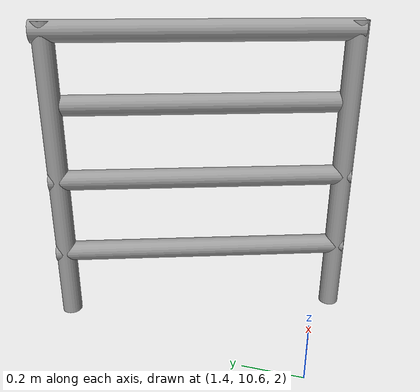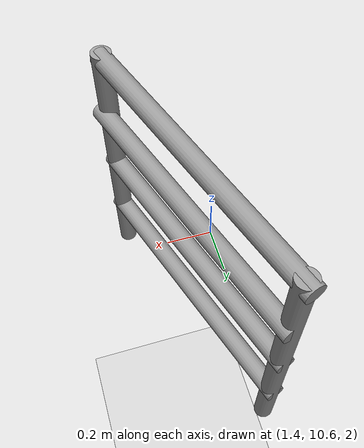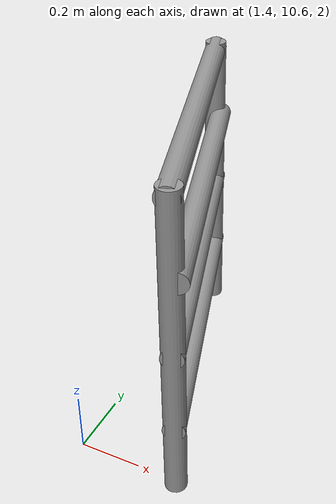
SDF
<sdf version="1.6">
 <world name="default">
  <model name="ground_plane">
   <static>1</static>
   <link name="link">
    <collision name="collision">
     <geometry><plane><normal>0 0 1</normal><size>100 100</size></plane></geometry>
     <surface><friction><ode><mu>100</mu><mu2>50</mu2></ode></friction></surface>
    </collision>
    <visual name="visual">
     <cast_shadows>0</cast_shadows>
     <geometry><plane><normal>0 0 1</normal><size>100 100</size></plane></geometry>
     <material>
      <script><uri>file://media/materials/scripts/gazebo.material</uri><name>Gazebo/Grey</name></script>
     </material>
    </visual>
   </link>
  </model>
  <model name="indoor_fence">
   <link name="link">
    <inertial>
     <mass>1</mass>
     <inertia><ixx>0.145833</ixx><ixy>0</ixy><ixz>0</ixz><iyy>0.145833</iyy><iyz>0</iyz><izz>0.125</izz></inertia>
    </inertial>
    <pose>0.071704 -0.128855 0 0 -0 0</pose>
    <visual name="visual">
     <geometry><cylinder><radius>0.0332942</radius><length>1</length></cylinder></geometry>
     <material>
      <script><name>Gazebo/Grey</name><uri>file://media/materials/scripts/gazebo.material</uri></script>
      <shader type="pixel"/>
     </material>
    </visual>
    <collision name="collision">
     <geometry><cylinder><radius>0.033294</radius><length>1</length></cylinder></geometry>
     <surface>
      <friction>
       <ode><mu>1</mu><mu2>1</mu2><fdir1>0 0 0</fdir1><slip1>0</slip1><slip2>0</slip2></ode>
       <torsional>
        <coefficient>1</coefficient>
        <patch_radius>0</patch_radius>
        <surface_radius>0</surface_radius>
        <use_patch_radius>1</use_patch_radius>
        <ode><slip>0</slip></ode>
       </torsional>
      </friction>
      <bounce><restitution_coefficient>0</restitution_coefficient><threshold>1e+06</threshold></bounce>
      <contact>
       <collide_without_contact>0</collide_without_contact>
       <collide_without_contact_bitmask>1</collide_without_contact_bitmask>
       <collide_bitmask>1</collide_bitmask>
       <ode>
        <soft_cfm>0</soft_cfm>
        <soft_erp>0.2</soft_erp>
        <kp>1e+13</kp>
        <kd>1</kd>
        <max_vel>0.01</max_vel>
        <min_depth>0</min_depth>
       </ode>
       <bullet>
        <split_impulse>1</split_impulse>
        <split_impulse_penetration_threshold>-0.01</split_impulse_penetration_threshold>
        <soft_cfm>0</soft_cfm>
        <soft_erp>0.2</soft_erp>
        <kp>1e+13</kp>
        <kd>1</kd>
       </bullet>
      </contact>
     </surface>
    </collision>
   </link>
   <link name="link_clone">
    <inertial>
     <mass>1</mass>
     <inertia><ixx>0.145833</ixx><ixy>0</ixy><ixz>0</ixz><iyy>0.145833</iyy><iyz>0</iyz><izz>0.125</izz></inertia>
    </inertial>
    <pose>0.369391 -1.02864 0 0 -0 0</pose>
    <visual name="visual">
     <geometry><cylinder><radius>0.0332942</radius><length>1</length></cylinder></geometry>
     <material>
      <script><name>Gazebo/Grey</name><uri>file://media/materials/scripts/gazebo.material</uri></script>
      <shader type="pixel"/>
     </material>
    </visual>
    <collision name="collision">
     <geometry><cylinder><radius>0.033294</radius><length>1</length></cylinder></geometry>
     <surface>
      <friction>
       <ode><mu>1</mu><mu2>1</mu2><fdir1>0 0 0</fdir1><slip1>0</slip1><slip2>0</slip2></ode>
       <torsional>
        <coefficient>1</coefficient>
        <patch_radius>0</patch_radius>
        <surface_radius>0</surface_radius>
        <use_patch_radius>1</use_patch_radius>
        <ode><slip>0</slip></ode>
       </torsional>
      </friction>
      <bounce><restitution_coefficient>0</restitution_coefficient><threshold>1e+06</threshold></bounce>
      <contact>
       <collide_without_contact>0</collide_without_contact>
       <collide_without_contact_bitmask>1</collide_without_contact_bitmask>
       <collide_bitmask>1</collide_bitmask>
       <ode>
        <soft_cfm>0</soft_cfm>
        <soft_erp>0.2</soft_erp>
        <kp>1e+13</kp>
        <kd>1</kd>
        <max_vel>0.01</max_vel>
        <min_depth>0</min_depth>
       </ode>
       <bullet>
        <split_impulse>1</split_impulse>
        <split_impulse_penetration_threshold>-0.01</split_impulse_penetration_threshold>
        <soft_cfm>0</soft_cfm>
        <soft_erp>0.2</soft_erp>
        <kp>1e+13</kp>
        <kd>1</kd>
       </bullet>
      </contact>
     </surface>
    </collision>
   </link>
   <link name="link_clone_0">
    <inertial>
     <mass>1</mass>
     <inertia><ixx>0.145833</ixx><ixy>0</ixy><ixz>0</ixz><iyy>0.145833</iyy><iyz>0</iyz><izz>0.125</izz></inertia>
    </inertial>
    <pose>0.220035 -0.575022 -0.262394 -1.57275 0.000646 0.319166</pose>
    <visual name="visual">
     <geometry><cylinder><radius>0.0332942</radius><length>1</length></cylinder></geometry>
     <material>
      <script><name>Gazebo/Grey</name><uri>file://media/materials/scripts/gazebo.material</uri></script>
      <shader type="pixel"/>
     </material>
    </visual>
    <collision name="collision">
     <geometry><cylinder><radius>0.033294</radius><length>1</length></cylinder></geometry>
     <surface>
      <friction>
       <ode><mu>1</mu><mu2>1</mu2><fdir1>0 0 0</fdir1><slip1>0</slip1><slip2>0</slip2></ode>
       <torsional>
        <coefficient>1</coefficient>
        <patch_radius>0</patch_radius>
        <surface_radius>0</surface_radius>
        <use_patch_radius>1</use_patch_radius>
        <ode><slip>0</slip></ode>
       </torsional>
      </friction>
      <bounce><restitution_coefficient>0</restitution_coefficient><threshold>1e+06</threshold></bounce>
      <contact>
       <collide_without_contact>0</collide_without_contact>
       <collide_without_contact_bitmask>1</collide_without_contact_bitmask>
       <collide_bitmask>1</collide_bitmask>
       <ode>
        <soft_cfm>0</soft_cfm>
        <soft_erp>0.2</soft_erp>
        <kp>1e+13</kp>
        <kd>1</kd>
        <max_vel>0.01</max_vel>
        <min_depth>0</min_depth>
       </ode>
       <bullet>
        <split_impulse>1</split_impulse>
        <split_impulse_penetration_threshold>-0.01</split_impulse_penetration_threshold>
        <soft_cfm>0</soft_cfm>
        <soft_erp>0.2</soft_erp>
        <kp>1e+13</kp>
        <kd>1</kd>
       </bullet>
      </contact>
     </surface>
    </collision>
   </link>
   <link name="link_clone_0_clone">
    <inertial>
     <mass>1</mass>
     <inertia><ixx>0.145833</ixx><ixy>0</ixy><ixz>0</ixz><iyy>0.145833</iyy><iyz>0</iyz><izz>0.125</izz></inertia>
    </inertial>
    <pose>0.220715 -0.57597 9e-06 -1.57275 0.000646 0.319166</pose>
    <visual name="visual">
     <geometry><cylinder><radius>0.0332942</radius><length>1</length></cylinder></geometry>
     <material>
      <script><name>Gazebo/Grey</name><uri>file://media/materials/scripts/gazebo.material</uri></script>
      <shader type="pixel"/>
     </material>
    </visual>
    <collision name="collision">
     <geometry><cylinder><radius>0.033294</radius><length>1</length></cylinder></geometry>
     <surface>
      <friction>
       <ode><mu>1</mu><mu2>1</mu2><fdir1>0 0 0</fdir1><slip1>0</slip1><slip2>0</slip2></ode>
       <torsional>
        <coefficient>1</coefficient>
        <patch_radius>0</patch_radius>
        <surface_radius>0</surface_radius>
        <use_patch_radius>1</use_patch_radius>
        <ode><slip>0</slip></ode>
       </torsional>
      </friction>
      <bounce><restitution_coefficient>0</restitution_coefficient><threshold>1e+06</threshold></bounce>
      <contact>
       <collide_without_contact>0</collide_without_contact>
       <collide_without_contact_bitmask>1</collide_without_contact_bitmask>
       <collide_bitmask>1</collide_bitmask>
       <ode>
        <soft_cfm>0</soft_cfm>
        <soft_erp>0.2</soft_erp>
        <kp>1e+13</kp>
        <kd>1</kd>
        <max_vel>0.01</max_vel>
        <min_depth>0</min_depth>
       </ode>
       <bullet>
        <split_impulse>1</split_impulse>
        <split_impulse_penetration_threshold>-0.01</split_impulse_penetration_threshold>
        <soft_cfm>0</soft_cfm>
        <soft_erp>0.2</soft_erp>
        <kp>1e+13</kp>
        <kd>1</kd>
       </bullet>
      </contact>
     </surface>
    </collision>
   </link>
   <link name="link_clone_0_clone_0">
    <inertial>
     <mass>1</mass>
     <inertia><ixx>0.145833</ixx><ixy>0</ixy><ixz>0</ixz><iyy>0.145833</iyy><iyz>0</iyz><izz>0.125</izz></inertia>
    </inertial>
    <pose>0.236881 -0.573625 0.245272 -1.57275 0.000646 0.319166</pose>
    <visual name="visual">
     <geometry><cylinder><radius>0.0332942</radius><length>1</length></cylinder></geometry>
     <material>
      <script><name>Gazebo/Grey</name><uri>file://media/materials/scripts/gazebo.material</uri></script>
      <shader type="pixel"/>
     </material>
    </visual>
    <collision name="collision">
     <geometry><cylinder><radius>0.033294</radius><length>1</length></cylinder></geometry>
     <surface>
      <friction>
       <ode><mu>1</mu><mu2>1</mu2><fdir1>0 0 0</fdir1><slip1>0</slip1><slip2>0</slip2></ode>
       <torsional>
        <coefficient>1</coefficient>
        <patch_radius>0</patch_radius>
        <surface_radius>0</surface_radius>
        <use_patch_radius>1</use_patch_radius>
        <ode><slip>0</slip></ode>
       </torsional>
      </friction>
      <bounce><restitution_coefficient>0</restitution_coefficient><threshold>1e+06</threshold></bounce>
      <contact>
       <collide_without_contact>0</collide_without_contact>
       <collide_without_contact_bitmask>1</collide_without_contact_bitmask>
       <collide_bitmask>1</collide_bitmask>
       <ode>
        <soft_cfm>0</soft_cfm>
        <soft_erp>0.2</soft_erp>
        <kp>1e+13</kp>
        <kd>1</kd>
        <max_vel>0.01</max_vel>
        <min_depth>0</min_depth>
       </ode>
       <bullet>
        <split_impulse>1</split_impulse>
        <split_impulse_penetration_threshold>-0.01</split_impulse_penetration_threshold>
        <soft_cfm>0</soft_cfm>
        <soft_erp>0.2</soft_erp>
        <kp>1e+13</kp>
        <kd>1</kd>
       </bullet>
      </contact>
     </surface>
    </collision>
   </link>
   <link name="link_clone_0_clone_1">
    <inertial>
     <mass>1</mass>
     <inertia><ixx>0.145833</ixx><ixy>0</ixy><ixz>0</ixz><iyy>0.145833</iyy><iyz>0</iyz><izz>0.125</izz></inertia>
    </inertial>
    <pose>0.215457 -0.570916 0.471531 -1.57275 0.000646 0.319166</pose>
    <visual name="visual">
     <geometry><cylinder><radius>0.0332942</radius><length>1</length></cylinder></geometry>
     <material>
      <script><name>Gazebo/Grey</name><uri>file://media/materials/scripts/gazebo.material</uri></script>
      <shader type="pixel"/>
     </material>
    </visual>
    <collision name="collision">
     <geometry><cylinder><radius>0.033294</radius><length>1</length></cylinder></geometry>
     <surface>
      <friction>
       <ode><mu>1</mu><mu2>1</mu2><fdir1>0 0 0</fdir1><slip1>0</slip1><slip2>0</slip2></ode>
       <torsional>
        <coefficient>1</coefficient>
        <patch_radius>0</patch_radius>
        <surface_radius>0</surface_radius>
        <use_patch_radius>1</use_patch_radius>
        <ode><slip>0</slip></ode>
       </torsional>
      </friction>
      <bounce><restitution_coefficient>0</restitution_coefficient><threshold>1e+06</threshold></bounce>
      <contact>
       <collide_without_contact>0</collide_without_contact>
       <collide_without_contact_bitmask>1</collide_without_contact_bitmask>
       <collide_bitmask>1</collide_bitmask>
       <ode>
        <soft_cfm>0</soft_cfm>
        <soft_erp>0.2</soft_erp>
        <kp>1e+13</kp>
        <kd>1</kd>
        <max_vel>0.01</max_vel>
        <min_depth>0</min_depth>
       </ode>
       <bullet>
        <split_impulse>1</split_impulse>
        <split_impulse_penetration_threshold>-0.01</split_impulse_penetration_threshold>
        <soft_cfm>0</soft_cfm>
        <soft_erp>0.2</soft_erp>
        <kp>1e+13</kp>
        <kd>1</kd>
       </bullet>
      </contact>
     </surface>
    </collision>
   </link>
   <static>1</static>
   <pose>1.39323 11.5716 2.56606 0 -0 0</pose>
  </model>
 </world>
</sdf>
